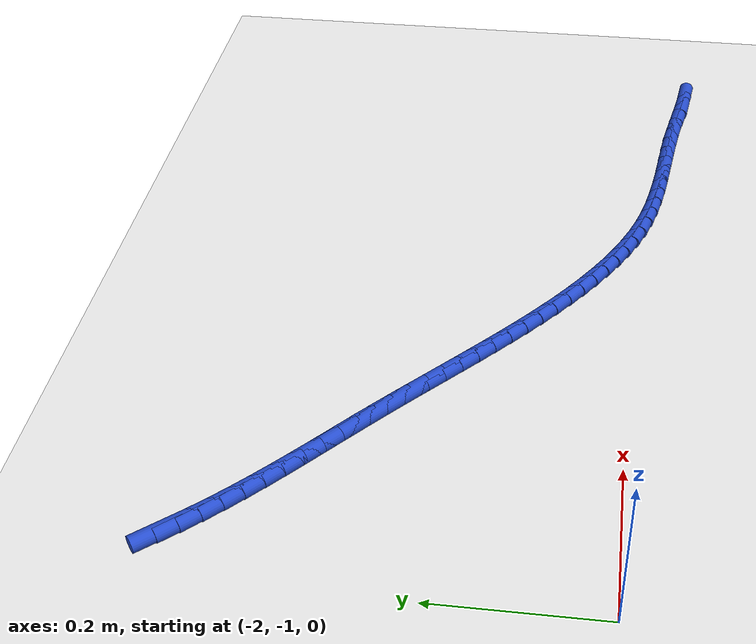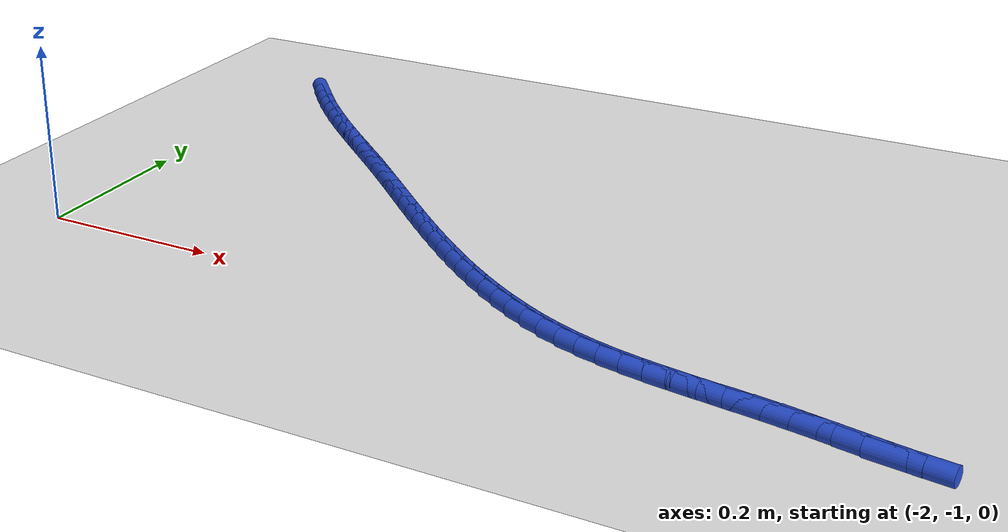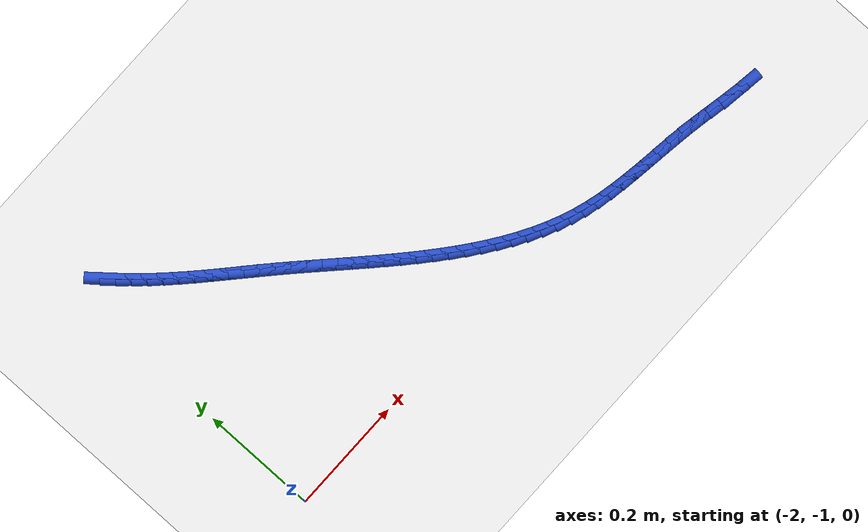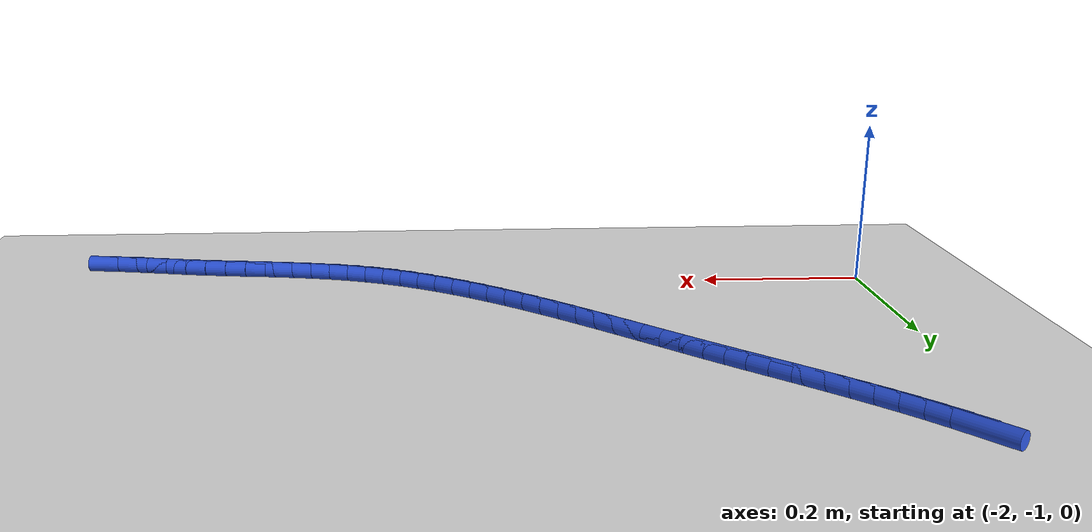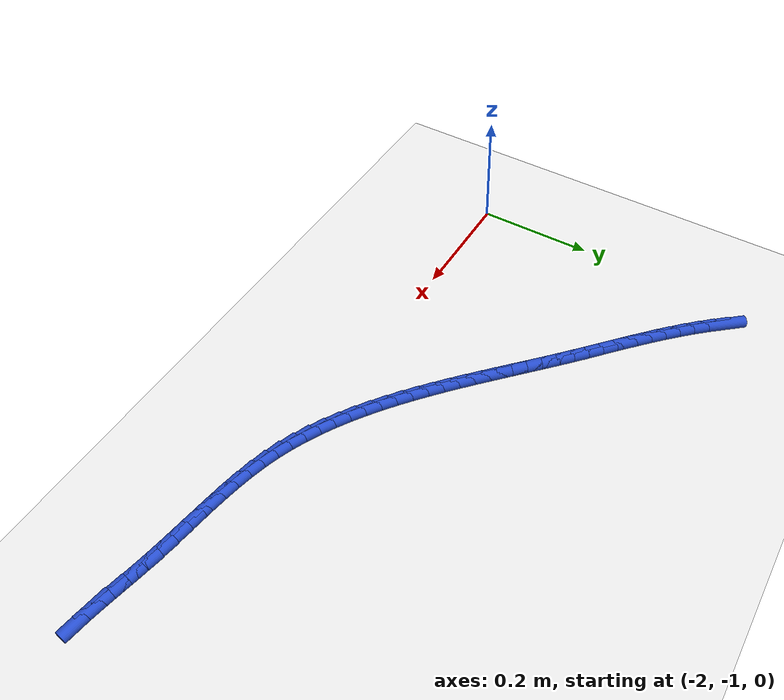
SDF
<sdf version="1.6">
 <world name="default">
  <model name="ground_plane">
   <static>1</static>
   <link name="link">
    <collision name="collision">
     <geometry><plane><normal>0 0 1</normal><size>100 100</size></plane></geometry>
     <surface><friction><ode><mu>100</mu><mu2>50</mu2></ode></friction></surface>
    </collision>
    <visual name="visual">
     <cast_shadows>0</cast_shadows>
     <geometry><plane><normal>0 0 1</normal><size>100 100</size></plane></geometry>
     <material>
      <script><uri>file://media/materials/scripts/gazebo.material</uri><name>Gazebo/WhiteGlow</name></script>
     </material>
    </visual>
   </link>
  </model>
  <model name="line">
   <link name="link_152">
    <pose>-1.9448164108800308 -0.5251991291478704 0.01 0 1.57 -0.876740424788744</pose>
    <collision name="collision">
     <geometry><cylinder><radius>0.01</radius><length>0.08</length></cylinder></geometry>
    </collision>
    <visual name="visual">
     <material>
      <script><name>Gazebo/Blue</name><uri>file://media/materials/scripts/gazebo.material</uri></script>
     </material>
     <geometry><cylinder><radius>0.01</radius><length>0.08</length></cylinder></geometry>
    </visual>
   </link>
   <link name="link_153">
    <pose>-1.9284806940674324 -0.5448292104717751 0.01 0 1.57 -0.8443099552716218</pose>
    <collision name="collision">
     <geometry><cylinder><radius>0.01</radius><length>0.08</length></cylinder></geometry>
    </collision>
    <visual name="visual">
     <material>
      <script><name>Gazebo/Blue</name><uri>file://media/materials/scripts/gazebo.material</uri></script>
     </material>
     <geometry><cylinder><radius>0.01</radius><length>0.08</length></cylinder></geometry>
    </visual>
   </link>
   <link name="link_154">
    <pose>-1.9115592810219368 -0.5638717806769145 0.01 0 1.57 -0.8161089145542858</pose>
    <collision name="collision">
     <geometry><cylinder><radius>0.01</radius><length>0.08</length></cylinder></geometry>
    </collision>
    <visual name="visual">
     <material>
      <script><name>Gazebo/Blue</name><uri>file://media/materials/scripts/gazebo.material</uri></script>
     </material>
     <geometry><cylinder><radius>0.01</radius><length>0.08</length></cylinder></geometry>
    </visual>
   </link>
   <link name="link_155">
    <pose>-1.8941329916249137 -0.5824026899506146 0.01 0 1.57 -0.7922070618314635</pose>
    <collision name="collision">
     <geometry><cylinder><radius>0.01</radius><length>0.08</length></cylinder></geometry>
    </collision>
    <visual name="visual">
     <material>
      <script><name>Gazebo/Blue</name><uri>file://media/materials/scripts/gazebo.material</uri></script>
     </material>
     <geometry><cylinder><radius>0.01</radius><length>0.08</length></cylinder></geometry>
    </visual>
   </link>
   <link name="link_156">
    <pose>-1.8762826457577344 -0.6004977884802027 0.01 0 1.57 -0.7726390225254464</pose>
    <collision name="collision">
     <geometry><cylinder><radius>0.01</radius><length>0.08</length></cylinder></geometry>
    </collision>
    <visual name="visual">
     <material>
      <script><name>Gazebo/Blue</name><uri>file://media/materials/scripts/gazebo.material</uri></script>
     </material>
     <geometry><cylinder><radius>0.01</radius><length>0.08</length></cylinder></geometry>
    </visual>
   </link>
   <link name="link_157">
    <pose>-1.8580890633017686 -0.618232926453004 0.01 0 1.57 -0.7574173094170702</pose>
    <collision name="collision">
     <geometry><cylinder><radius>0.01</radius><length>0.08</length></cylinder></geometry>
    </collision>
    <visual name="visual">
     <material>
      <script><name>Gazebo/Blue</name><uri>file://media/materials/scripts/gazebo.material</uri></script>
     </material>
     <geometry><cylinder><radius>0.01</radius><length>0.08</length></cylinder></geometry>
    </visual>
   </link>
   <link name="link_158">
    <pose>-1.8396330641383865 -0.6356839540563451 0.01 0 1.57 -0.746543301275951</pose>
    <collision name="collision">
     <geometry><cylinder><radius>0.01</radius><length>0.08</length></cylinder></geometry>
    </collision>
    <visual name="visual">
     <material>
      <script><name>Gazebo/Blue</name><uri>file://media/materials/scripts/gazebo.material</uri></script>
     </material>
     <geometry><cylinder><radius>0.01</radius><length>0.08</length></cylinder></geometry>
    </visual>
   </link>
   <link name="link_159">
    <pose>-1.8209954681489586 -0.6529267214775528 0.01 0 1.57 -0.7400158673841618</pose>
    <collision name="collision">
     <geometry><cylinder><radius>0.01</radius><length>0.08</length></cylinder></geometry>
    </collision>
    <visual name="visual">
     <material>
      <script><name>Gazebo/Blue</name><uri>file://media/materials/scripts/gazebo.material</uri></script>
     </material>
     <geometry><cylinder><radius>0.01</radius><length>0.08</length></cylinder></geometry>
    </visual>
   </link>
   <link name="link_160">
    <pose>-1.8022570952148542 -0.6700370789039529 0.01 0 1.57 -0.7378375443140213</pose>
    <collision name="collision">
     <geometry><cylinder><radius>0.01</radius><length>0.08</length></cylinder></geometry>
    </collision>
    <visual name="visual">
     <material>
      <script><name>Gazebo/Blue</name><uri>file://media/materials/scripts/gazebo.material</uri></script>
     </material>
     <geometry><cylinder><radius>0.01</radius><length>0.08</length></cylinder></geometry>
    </visual>
   </link>
   <link name="link_161">
    <pose>-1.7834987652174443 -0.6870908765228723 0.01 0 1.57 -0.7400182700028098</pose>
    <collision name="collision">
     <geometry><cylinder><radius>0.01</radius><length>0.08</length></cylinder></geometry>
    </collision>
    <visual name="visual">
     <material>
      <script><name>Gazebo/Blue</name><uri>file://media/materials/scripts/gazebo.material</uri></script>
     </material>
     <geometry><cylinder><radius>0.01</radius><length>0.08</length></cylinder></geometry>
    </visual>
   </link>
   <link name="link_162">
    <pose>-1.764801298038099 -0.7041639645216369 0.01 0 1.57 -0.7465528830922393</pose>
    <collision name="collision">
     <geometry><cylinder><radius>0.01</radius><length>0.08</length></cylinder></geometry>
    </collision>
    <visual name="visual">
     <material>
      <script><name>Gazebo/Blue</name><uri>file://media/materials/scripts/gazebo.material</uri></script>
     </material>
     <geometry><cylinder><radius>0.01</radius><length>0.08</length></cylinder></geometry>
    </visual>
   </link>
   <link name="link_163">
    <pose>-1.7462449981788493 -0.7213318499668038 0.01 0 1.57 -0.7550931235645624</pose>
    <collision name="collision">
     <geometry><cylinder><radius>0.01</radius><length>0.08</length></cylinder></geometry>
    </collision>
    <visual name="visual">
     <material>
      <script><name>Gazebo/Blue</name><uri>file://media/materials/scripts/gazebo.material</uri></script>
     </material>
     <geometry><cylinder><radius>0.01</radius><length>0.08</length></cylinder></geometry>
    </visual>
   </link>
   <link name="link_164">
    <pose>-1.727858972015479 -0.7386359540794779 0.01 0 1.57 -0.7612746098659001</pose>
    <collision name="collision">
     <geometry><cylinder><radius>0.01</radius><length>0.08</length></cylinder></geometry>
    </collision>
    <visual name="visual">
     <material>
      <script><name>Gazebo/Blue</name><uri>file://media/materials/scripts/gazebo.material</uri></script>
     </material>
     <geometry><cylinder><radius>0.01</radius><length>0.08</length></cylinder></geometry>
    </visual>
   </link>
   <link name="link_165">
    <pose>-1.70957839259941 -0.7560551606988041 0.01 0 1.57 -0.764606963289871</pose>
    <collision name="collision">
     <geometry><cylinder><radius>0.01</radius><length>0.08</length></cylinder></geometry>
    </collision>
    <visual name="visual">
     <material>
      <script><name>Gazebo/Blue</name><uri>file://media/materials/scripts/gazebo.material</uri></script>
     </material>
     <geometry><cylinder><radius>0.01</radius><length>0.08</length></cylinder></geometry>
    </visual>
   </link>
   <link name="link_166">
    <pose>-1.6913283707128544 -0.7735616545720176 0.01 0 1.57 -0.7650891542660424</pose>
    <collision name="collision">
     <geometry><cylinder><radius>0.01</radius><length>0.08</length></cylinder></geometry>
    </collision>
    <visual name="visual">
     <material>
      <script><name>Gazebo/Blue</name><uri>file://media/materials/scripts/gazebo.material</uri></script>
     </material>
     <geometry><cylinder><radius>0.01</radius><length>0.08</length></cylinder></geometry>
    </visual>
   </link>
   <link name="link_167">
    <pose>-1.6730340171380238 -0.7911276204463563 0.01 0 1.57 -0.7627437577997476</pose>
    <collision name="collision">
     <geometry><cylinder><radius>0.01</radius><length>0.08</length></cylinder></geometry>
    </collision>
    <visual name="visual">
     <material>
      <script><name>Gazebo/Blue</name><uri>file://media/materials/scripts/gazebo.material</uri></script>
     </material>
     <geometry><cylinder><radius>0.01</radius><length>0.08</length></cylinder></geometry>
    </visual>
   </link>
   <link name="link_168">
    <pose>-1.6546204426571298 -0.808725243069057 0.01 0 1.57 -0.7576161903642206</pose>
    <collision name="collision">
     <geometry><cylinder><radius>0.01</radius><length>0.08</length></cylinder></geometry>
    </collision>
    <visual name="visual">
     <material>
      <script><name>Gazebo/Blue</name><uri>file://media/materials/scripts/gazebo.material</uri></script>
     </material>
     <geometry><cylinder><radius>0.01</radius><length>0.08</length></cylinder></geometry>
    </visual>
   </link>
   <link name="link_169">
    <pose>-1.6360127580523842 -0.8263267071873565 0.01 0 1.57 -0.7497412938100532</pose>
    <collision name="collision">
     <geometry><cylinder><radius>0.01</radius><length>0.08</length></cylinder></geometry>
    </collision>
    <visual name="visual">
     <material>
      <script><name>Gazebo/Blue</name><uri>file://media/materials/scripts/gazebo.material</uri></script>
     </material>
     <geometry><cylinder><radius>0.01</radius><length>0.08</length></cylinder></geometry>
    </visual>
   </link>
   <link name="link_170">
    <pose>-1.6171395863669717 -0.843899769231207 0.01 0 1.57 -0.7388233387637214</pose>
    <collision name="collision">
     <geometry><cylinder><radius>0.01</radius><length>0.08</length></cylinder></geometry>
    </collision>
    <visual name="visual">
     <material>
      <script><name>Gazebo/Blue</name><uri>file://media/materials/scripts/gazebo.material</uri></script>
     </material>
     <geometry><cylinder><radius>0.01</radius><length>0.08</length></cylinder></geometry>
    </visual>
   </link>
   <link name="link_171">
    <pose>-1.5979676735196802 -0.8613641196724202 0.01 0 1.57 -0.7246265797054128</pose>
    <collision name="collision">
     <geometry><cylinder><radius>0.01</radius><length>0.08</length></cylinder></geometry>
    </collision>
    <visual name="visual">
     <material>
      <script><name>Gazebo/Blue</name><uri>file://media/materials/scripts/gazebo.material</uri></script>
     </material>
     <geometry><cylinder><radius>0.01</radius><length>0.08</length></cylinder></geometry>
    </visual>
   </link>
   <link name="link_172">
    <pose>-1.578487133551925 -0.8786099860635885 0.01 0 1.57 -0.7070768653602251</pose>
    <collision name="collision">
     <geometry><cylinder><radius>0.01</radius><length>0.08</length></cylinder></geometry>
    </collision>
    <visual name="visual">
     <material>
      <script><name>Gazebo/Blue</name><uri>file://media/materials/scripts/gazebo.material</uri></script>
     </material>
     <geometry><cylinder><radius>0.01</radius><length>0.08</length></cylinder></geometry>
    </visual>
   </link>
   <link name="link_173">
    <pose>-1.558688418370291 -0.8955271699712599 0.01 0 1.57 -0.686063262537611</pose>
    <collision name="collision">
     <geometry><cylinder><radius>0.01</radius><length>0.08</length></cylinder></geometry>
    </collision>
    <visual name="visual">
     <material>
      <script><name>Gazebo/Blue</name><uri>file://media/materials/scripts/gazebo.material</uri></script>
     </material>
     <geometry><cylinder><radius>0.01</radius><length>0.08</length></cylinder></geometry>
    </visual>
   </link>
   <link name="link_174">
    <pose>-1.5385619798813603 -0.9120054729619836 0.01 0 1.57 -0.6614390168587542</pose>
    <collision name="collision">
     <geometry><cylinder><radius>0.01</radius><length>0.08</length></cylinder></geometry>
    </collision>
    <visual name="visual">
     <material>
      <script><name>Gazebo/Blue</name><uri>file://media/materials/scripts/gazebo.material</uri></script>
     </material>
     <geometry><cylinder><radius>0.01</radius><length>0.08</length></cylinder></geometry>
    </visual>
   </link>
   <link name="link_175">
    <pose>-1.5180982699917174 -0.927934696602309 0.01 0 1.57 -0.6330266042722551</pose>
    <collision name="collision">
     <geometry><cylinder><radius>0.01</radius><length>0.08</length></cylinder></geometry>
    </collision>
    <visual name="visual">
     <material>
      <script><name>Gazebo/Blue</name><uri>file://media/materials/scripts/gazebo.material</uri></script>
     </material>
     <geometry><cylinder><radius>0.01</radius><length>0.08</length></cylinder></geometry>
    </visual>
   </link>
   <link name="link_176">
    <pose>-1.4972877406079448 -0.943204642458785 0.01 0 1.57 -0.600624575354213</pose>
    <collision name="collision">
     <geometry><cylinder><radius>0.01</radius><length>0.08</length></cylinder></geometry>
    </collision>
    <visual name="visual">
     <material>
      <script><name>Gazebo/Blue</name><uri>file://media/materials/scripts/gazebo.material</uri></script>
     </material>
     <geometry><cylinder><radius>0.01</radius><length>0.08</length></cylinder></geometry>
    </visual>
   </link>
   <link name="link_177">
    <pose>-1.4761208436366255 -0.9577051120979597 0.01 0 1.57 -0.5640172252132116</pose>
    <collision name="collision">
     <geometry><cylinder><radius>0.01</radius><length>0.08</length></cylinder></geometry>
    </collision>
    <visual name="visual">
     <material>
      <script><name>Gazebo/Blue</name><uri>file://media/materials/scripts/gazebo.material</uri></script>
     </material>
     <geometry><cylinder><radius>0.01</radius><length>0.08</length></cylinder></geometry>
    </visual>
   </link>
   <link name="link_178">
    <pose>-1.4545880309843433 -0.9713259070863831 0.01 0 1.57 -0.5229882642071934</pose>
    <collision name="collision">
     <geometry><cylinder><radius>0.01</radius><length>0.08</length></cylinder></geometry>
    </collision>
    <visual name="visual">
     <material>
      <script><name>Gazebo/Blue</name><uri>file://media/materials/scripts/gazebo.material</uri></script>
     </material>
     <geometry><cylinder><radius>0.01</radius><length>0.08</length></cylinder></geometry>
    </visual>
   </link>
   <link name="link_179">
    <pose>-1.4326797545576815 -0.9839568289906033 0.01 0 1.57 -0.4773396918454416</pose>
    <collision name="collision">
     <geometry><cylinder><radius>0.01</radius><length>0.08</length></cylinder></geometry>
    </collision>
    <visual name="visual">
     <material>
      <script><name>Gazebo/Blue</name><uri>file://media/materials/scripts/gazebo.material</uri></script>
     </material>
     <geometry><cylinder><radius>0.01</radius><length>0.08</length></cylinder></geometry>
    </visual>
   </link>
   <link name="link_180">
    <pose>-1.4103864662632233 -0.9954876793771696 0.01 0 1.57 -0.42691684376346023</pose>
    <collision name="collision">
     <geometry><cylinder><radius>0.01</radius><length>0.08</length></cylinder></geometry>
    </collision>
    <visual name="visual">
     <material>
      <script><name>Gazebo/Blue</name><uri>file://media/materials/scripts/gazebo.material</uri></script>
     </material>
     <geometry><cylinder><radius>0.01</radius><length>0.08</length></cylinder></geometry>
    </visual>
   </link>
   <link name="link_181">
    <pose>-1.3876986180075512 -1.0058082598126312 0.01 0 1.57 -0.37163989047814594</pose>
    <collision name="collision">
     <geometry><cylinder><radius>0.01</radius><length>0.08</length></cylinder></geometry>
    </collision>
    <visual name="visual">
     <material>
      <script><name>Gazebo/Blue</name><uri>file://media/materials/scripts/gazebo.material</uri></script>
     </material>
     <geometry><cylinder><radius>0.01</radius><length>0.08</length></cylinder></geometry>
    </visual>
   </link>
   <link name="link_182">
    <pose>-1.36460666169725 -1.0148083718635366 0.01 0 1.57 -0.3124367778824745</pose>
    <collision name="collision">
     <geometry><cylinder><radius>0.01</radius><length>0.08</length></cylinder></geometry>
    </collision>
    <visual name="visual">
     <material>
      <script><name>Gazebo/Blue</name><uri>file://media/materials/scripts/gazebo.material</uri></script>
     </material>
     <geometry><cylinder><radius>0.01</radius><length>0.08</length></cylinder></geometry>
    </visual>
   </link>
   <link name="link_183">
    <pose>-1.3411033985454102 -1.0224003118847491 0.01 0 1.57 -0.25794765392060676</pose>
    <collision name="collision">
     <geometry><cylinder><radius>0.01</radius><length>0.08</length></cylinder></geometry>
    </collision>
    <visual name="visual">
     <material>
      <script><name>Gazebo/Blue</name><uri>file://media/materials/scripts/gazebo.material</uri></script>
     </material>
     <geometry><cylinder><radius>0.01</radius><length>0.08</length></cylinder></geometry>
    </visual>
   </link>
   <link name="link_184">
    <pose>-1.317203491957334 -1.0287057083827296 0.01 0 1.57 -0.21320290710853906</pose>
    <collision name="collision">
     <geometry><cylinder><radius>0.01</radius><length>0.08</length></cylinder></geometry>
    </collision>
    <visual name="visual">
     <material>
      <script><name>Gazebo/Blue</name><uri>file://media/materials/scripts/gazebo.material</uri></script>
     </material>
     <geometry><cylinder><radius>0.01</radius><length>0.08</length></cylinder></geometry>
    </visual>
   </link>
   <link name="link_185">
    <pose>-1.2929334911578154 -1.033959997488657 0.01 0 1.57 -0.1784603532847377</pose>
    <collision name="collision">
     <geometry><cylinder><radius>0.01</radius><length>0.08</length></cylinder></geometry>
    </collision>
    <visual name="visual">
     <material>
      <script><name>Gazebo/Blue</name><uri>file://media/materials/scripts/gazebo.material</uri></script>
     </material>
     <geometry><cylinder><radius>0.01</radius><length>0.08</length></cylinder></geometry>
    </visual>
   </link>
   <link name="link_186">
    <pose>-1.2683200640137107 -1.0383997513404999 0.01 0 1.57 -0.1536827571760941</pose>
    <collision name="collision">
     <geometry><cylinder><radius>0.01</radius><length>0.08</length></cylinder></geometry>
    </collision>
    <visual name="visual">
     <material>
      <script><name>Gazebo/Blue</name><uri>file://media/materials/scripts/gazebo.material</uri></script>
     </material>
     <geometry><cylinder><radius>0.01</radius><length>0.08</length></cylinder></geometry>
    </visual>
   </link>
   <link name="link_187">
    <pose>-1.2433898783918778 -1.042261542076227 0.01 0 1.57 -0.13868996548718793</pose>
    <collision name="collision">
     <geometry><cylinder><radius>0.01</radius><length>0.08</length></cylinder></geometry>
    </collision>
    <visual name="visual">
     <material>
      <script><name>Gazebo/Blue</name><uri>file://media/materials/scripts/gazebo.material</uri></script>
     </material>
     <geometry><cylinder><radius>0.01</radius><length>0.08</length></cylinder></geometry>
    </visual>
   </link>
   <link name="link_188">
    <pose>-1.2181696021591728 -1.0457819418338061 0.01 0 1.57 -0.133235996203054</pose>
    <collision name="collision">
     <geometry><cylinder><radius>0.01</radius><length>0.08</length></cylinder></geometry>
    </collision>
    <visual name="visual">
     <material>
      <script><name>Gazebo/Blue</name><uri>file://media/materials/scripts/gazebo.material</uri></script>
     </material>
     <geometry><cylinder><radius>0.01</radius><length>0.08</length></cylinder></geometry>
    </visual>
   </link>
   <link name="link_189">
    <pose>-1.1926859031824548 -1.049197522751206 0.01 0 1.57 -0.13705417143545587</pose>
    <collision name="collision">
     <geometry><cylinder><radius>0.01</radius><length>0.08</length></cylinder></geometry>
    </collision>
    <visual name="visual">
     <material>
      <script><name>Gazebo/Blue</name><uri>file://media/materials/scripts/gazebo.material</uri></script>
     </material>
     <geometry><cylinder><radius>0.01</radius><length>0.08</length></cylinder></geometry>
    </visual>
   </link>
   <link name="link_190">
    <pose>-1.16696544932858 -1.052744856966395 0.01 0 1.57 -0.14987337853476015</pose>
    <collision name="collision">
     <geometry><cylinder><radius>0.01</radius><length>0.08</length></cylinder></geometry>
    </collision>
    <visual name="visual">
     <material>
      <script><name>Gazebo/Blue</name><uri>file://media/materials/scripts/gazebo.material</uri></script>
     </material>
     <geometry><cylinder><radius>0.01</radius><length>0.08</length></cylinder></geometry>
    </visual>
   </link>
   <link name="link_191">
    <pose>-1.1410349084644063 -1.056660516617342 0.01 0 1.57 -0.1712823929435696</pose>
    <collision name="collision">
     <geometry><cylinder><radius>0.01</radius><length>0.08</length></cylinder></geometry>
    </collision>
    <visual name="visual">
     <material>
      <script><name>Gazebo/Blue</name><uri>file://media/materials/scripts/gazebo.material</uri></script>
     </material>
     <geometry><cylinder><radius>0.01</radius><length>0.08</length></cylinder></geometry>
    </visual>
   </link>
   <link name="link_192">
    <pose>-1.1149214797478135 -1.0611775468430473 0.01 0 1.57 -0.19123798384731422</pose>
    <collision name="collision">
     <geometry><cylinder><radius>0.01</radius><length>0.08</length></cylinder></geometry>
    </collision>
    <visual name="visual">
     <material>
      <script><name>Gazebo/Blue</name><uri>file://media/materials/scripts/gazebo.material</uri></script>
     </material>
     <geometry><cylinder><radius>0.01</radius><length>0.08</length></cylinder></geometry>
    </visual>
   </link>
   <link name="link_193">
    <pose>-1.0886935794618937 -1.0662553710729075 0.01 0 1.57 -0.19346663246536833</pose>
    <collision name="collision">
     <geometry><cylinder><radius>0.01</radius><length>0.08</length></cylinder></geometry>
    </collision>
    <visual name="visual">
     <material>
      <script><name>Gazebo/Blue</name><uri>file://media/materials/scripts/gazebo.material</uri></script>
     </material>
     <geometry><cylinder><radius>0.01</radius><length>0.08</length></cylinder></geometry>
    </visual>
   </link>
   <link name="link_194">
    <pose>-1.0624895525692106 -1.0713891881032294 0.01 0 1.57 -0.17636925226655306</pose>
    <collision name="collision">
     <geometry><cylinder><radius>0.01</radius><length>0.08</length></cylinder></geometry>
    </collision>
    <visual name="visual">
     <material>
      <script><name>Gazebo/Blue</name><uri>file://media/materials/scripts/gazebo.material</uri></script>
     </material>
     <geometry><cylinder><radius>0.01</radius><length>0.08</length></cylinder></geometry>
    </visual>
   </link>
   <link name="link_195">
    <pose>-1.03645452558624 -1.0760291770845958 0.01 0 1.57 -0.13892106629027912</pose>
    <collision name="collision">
     <geometry><cylinder><radius>0.01</radius><length>0.08</length></cylinder></geometry>
    </collision>
    <visual name="visual">
     <material>
      <script><name>Gazebo/Blue</name><uri>file://media/materials/scripts/gazebo.material</uri></script>
     </material>
     <geometry><cylinder><radius>0.01</radius><length>0.08</length></cylinder></geometry>
    </visual>
   </link>
  </model>
 </world>
</sdf>
